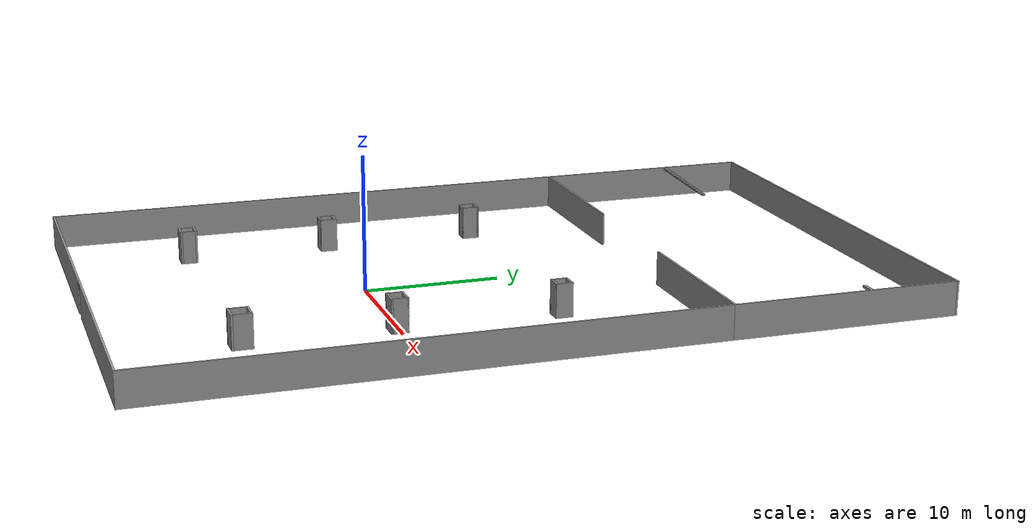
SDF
<?xml version='1.0'?>
<sdf version='1.7'>
  <model name='hall'>
    <pose>-0.072827 8.67162 0 0 -0 0</pose>
    <link name='Stairs_0'>
      <visual name='Stairs_0_Visual_0'>
        <pose>-17.3669 25.7971 0.083333 0 -0 0</pose>
        <geometry>
          <box>
            <size>1 0.233333 0.166667</size>
          </box>
        </geometry>
        <material>
          <script>
            <uri>file://media/materials/scripts/gazebo.material</uri>
            <name>Gazebo/Grey</name>
          </script>
          <ambient>1 1 1 1</ambient>
        </material>
        <meta>
          <layer>0</layer>
        </meta>
      </visual>
      <collision name='Stairs_0_Collision_0'>
        <geometry>
          <box>
            <size>1 0.233333 0.166667</size>
          </box>
        </geometry>
        <pose>-17.3669 25.7971 0.083333 0 -0 0</pose>
      </collision>
      <visual name='Stairs_0_Visual_1'>
        <pose>-17.3669 25.5638 0.25 0 -0 0</pose>
        <geometry>
          <box>
            <size>1 0.233333 0.166667</size>
          </box>
        </geometry>
        <material>
          <script>
            <uri>file://media/materials/scripts/gazebo.material</uri>
            <name>Gazebo/Grey</name>
          </script>
          <ambient>1 1 1 1</ambient>
        </material>
        <meta>
          <layer>0</layer>
        </meta>
      </visual>
      <collision name='Stairs_0_Collision_1'>
        <geometry>
          <box>
            <size>1 0.233333 0.166667</size>
          </box>
        </geometry>
        <pose>-17.3669 25.5638 0.25 0 -0 0</pose>
      </collision>
      <visual name='Stairs_0_Visual_2'>
        <pose>-17.3669 25.3305 0.416667 0 -0 0</pose>
        <geometry>
          <box>
            <size>1 0.233333 0.166667</size>
          </box>
        </geometry>
        <material>
          <script>
            <uri>file://media/materials/scripts/gazebo.material</uri>
            <name>Gazebo/Grey</name>
          </script>
          <ambient>1 1 1 1</ambient>
        </material>
        <meta>
          <layer>0</layer>
        </meta>
      </visual>
      <collision name='Stairs_0_Collision_2'>
        <geometry>
          <box>
            <size>1 0.233333 0.166667</size>
          </box>
        </geometry>
        <pose>-17.3669 25.3305 0.416667 0 -0 0</pose>
      </collision>
      <visual name='Stairs_0_Visual_3'>
        <pose>-17.3669 25.0971 0.583333 0 -0 0</pose>
        <geometry>
          <box>
            <size>1 0.233333 0.166667</size>
          </box>
        </geometry>
        <material>
          <script>
            <uri>file://media/materials/scripts/gazebo.material</uri>
            <name>Gazebo/Grey</name>
          </script>
          <ambient>1 1 1 1</ambient>
        </material>
        <meta>
          <layer>0</layer>
        </meta>
      </visual>
      <collision name='Stairs_0_Collision_3'>
        <geometry>
          <box>
            <size>1 0.233333 0.166667</size>
          </box>
        </geometry>
        <pose>-17.3669 25.0971 0.583333 0 -0 0</pose>
      </collision>
      <visual name='Stairs_0_Visual_4'>
        <pose>-17.3669 24.8638 0.75 0 -0 0</pose>
        <geometry>
          <box>
            <size>1 0.233333 0.166667</size>
          </box>
        </geometry>
        <material>
          <script>
            <uri>file://media/materials/scripts/gazebo.material</uri>
            <name>Gazebo/Grey</name>
          </script>
          <ambient>1 1 1 1</ambient>
        </material>
        <meta>
          <layer>0</layer>
        </meta>
      </visual>
      <collision name='Stairs_0_Collision_4'>
        <geometry>
          <box>
            <size>1 0.233333 0.166667</size>
          </box>
        </geometry>
        <pose>-17.3669 24.8638 0.75 0 -0 0</pose>
      </collision>
      <visual name='Stairs_0_Visual_5'>
        <pose>-17.3669 24.6305 0.916667 0 -0 0</pose>
        <geometry>
          <box>
            <size>1 0.233333 0.166667</size>
          </box>
        </geometry>
        <material>
          <script>
            <uri>file://media/materials/scripts/gazebo.material</uri>
            <name>Gazebo/Grey</name>
          </script>
          <ambient>1 1 1 1</ambient>
        </material>
        <meta>
          <layer>0</layer>
        </meta>
      </visual>
      <collision name='Stairs_0_Collision_5'>
        <geometry>
          <box>
            <size>1 0.233333 0.166667</size>
          </box>
        </geometry>
        <pose>-17.3669 24.6305 0.916667 0 -0 0</pose>
      </collision>
      <visual name='Stairs_0_Visual_6'>
        <pose>-17.3669 24.3971 1.08333 0 -0 0</pose>
        <geometry>
          <box>
            <size>1 0.233333 0.166667</size>
          </box>
        </geometry>
        <material>
          <script>
            <uri>file://media/materials/scripts/gazebo.material</uri>
            <name>Gazebo/Grey</name>
          </script>
          <ambient>1 1 1 1</ambient>
        </material>
        <meta>
          <layer>0</layer>
        </meta>
      </visual>
      <collision name='Stairs_0_Collision_6'>
        <geometry>
          <box>
            <size>1 0.233333 0.166667</size>
          </box>
        </geometry>
        <pose>-17.3669 24.3971 1.08333 0 -0 0</pose>
      </collision>
      <visual name='Stairs_0_Visual_7'>
        <pose>-17.3669 24.1638 1.25 0 -0 0</pose>
        <geometry>
          <box>
            <size>1 0.233333 0.166667</size>
          </box>
        </geometry>
        <material>
          <script>
            <uri>file://media/materials/scripts/gazebo.material</uri>
            <name>Gazebo/Grey</name>
          </script>
          <ambient>1 1 1 1</ambient>
        </material>
        <meta>
          <layer>0</layer>
        </meta>
      </visual>
      <collision name='Stairs_0_Collision_7'>
        <geometry>
          <box>
            <size>1 0.233333 0.166667</size>
          </box>
        </geometry>
        <pose>-17.3669 24.1638 1.25 0 -0 0</pose>
      </collision>
      <visual name='Stairs_0_Visual_8'>
        <pose>-17.3669 23.9305 1.41667 0 -0 0</pose>
        <geometry>
          <box>
            <size>1 0.233333 0.166667</size>
          </box>
        </geometry>
        <material>
          <script>
            <uri>file://media/materials/scripts/gazebo.material</uri>
            <name>Gazebo/Grey</name>
          </script>
          <ambient>1 1 1 1</ambient>
        </material>
        <meta>
          <layer>0</layer>
        </meta>
      </visual>
      <collision name='Stairs_0_Collision_8'>
        <geometry>
          <box>
            <size>1 0.233333 0.166667</size>
          </box>
        </geometry>
        <pose>-17.3669 23.9305 1.41667 0 -0 0</pose>
      </collision>
      <visual name='Stairs_0_Visual_9'>
        <pose>-17.3669 23.6971 1.58333 0 -0 0</pose>
        <geometry>
          <box>
            <size>1 0.233333 0.166667</size>
          </box>
        </geometry>
        <material>
          <script>
            <uri>file://media/materials/scripts/gazebo.material</uri>
            <name>Gazebo/Grey</name>
          </script>
          <ambient>1 1 1 1</ambient>
        </material>
        <meta>
          <layer>0</layer>
        </meta>
      </visual>
      <collision name='Stairs_0_Collision_9'>
        <geometry>
          <box>
            <size>1 0.233333 0.166667</size>
          </box>
        </geometry>
        <pose>-17.3669 23.6971 1.58333 0 -0 0</pose>
      </collision>
      <visual name='Stairs_0_Visual_10'>
        <pose>-17.3669 23.4638 1.75 0 -0 0</pose>
        <geometry>
          <box>
            <size>1 0.233333 0.166667</size>
          </box>
        </geometry>
        <material>
          <script>
            <uri>file://media/materials/scripts/gazebo.material</uri>
            <name>Gazebo/Grey</name>
          </script>
          <ambient>1 1 1 1</ambient>
        </material>
        <meta>
          <layer>0</layer>
        </meta>
      </visual>
      <collision name='Stairs_0_Collision_10'>
        <geometry>
          <box>
            <size>1 0.233333 0.166667</size>
          </box>
        </geometry>
        <pose>-17.3669 23.4638 1.75 0 -0 0</pose>
      </collision>
      <visual name='Stairs_0_Visual_11'>
        <pose>-17.3669 23.2305 1.91667 0 -0 0</pose>
        <geometry>
          <box>
            <size>1 0.233333 0.166667</size>
          </box>
        </geometry>
        <material>
          <script>
            <uri>file://media/materials/scripts/gazebo.material</uri>
            <name>Gazebo/Grey</name>
          </script>
          <ambient>1 1 1 1</ambient>
        </material>
        <meta>
          <layer>0</layer>
        </meta>
      </visual>
      <collision name='Stairs_0_Collision_11'>
        <geometry>
          <box>
            <size>1 0.233333 0.166667</size>
          </box>
        </geometry>
        <pose>-17.3669 23.2305 1.91667 0 -0 0</pose>
      </collision>
      <visual name='Stairs_0_Visual_12'>
        <pose>-17.3669 22.9971 2.08333 0 -0 0</pose>
        <geometry>
          <box>
            <size>1 0.233333 0.166667</size>
          </box>
        </geometry>
        <material>
          <script>
            <uri>file://media/materials/scripts/gazebo.material</uri>
            <name>Gazebo/Grey</name>
          </script>
          <ambient>1 1 1 1</ambient>
        </material>
        <meta>
          <layer>0</layer>
        </meta>
      </visual>
      <collision name='Stairs_0_Collision_12'>
        <geometry>
          <box>
            <size>1 0.233333 0.166667</size>
          </box>
        </geometry>
        <pose>-17.3669 22.9971 2.08333 0 -0 0</pose>
      </collision>
      <visual name='Stairs_0_Visual_13'>
        <pose>-17.3669 22.7638 2.25 0 -0 0</pose>
        <geometry>
          <box>
            <size>1 0.233333 0.166667</size>
          </box>
        </geometry>
        <material>
          <script>
            <uri>file://media/materials/scripts/gazebo.material</uri>
            <name>Gazebo/Grey</name>
          </script>
          <ambient>1 1 1 1</ambient>
        </material>
        <meta>
          <layer>0</layer>
        </meta>
      </visual>
      <collision name='Stairs_0_Collision_13'>
        <geometry>
          <box>
            <size>1 0.233333 0.166667</size>
          </box>
        </geometry>
        <pose>-17.3669 22.7638 2.25 0 -0 0</pose>
      </collision>
      <visual name='Stairs_0_Visual_14'>
        <pose>-17.3669 22.5305 2.41667 0 -0 0</pose>
        <geometry>
          <box>
            <size>1 0.233333 0.166667</size>
          </box>
        </geometry>
        <material>
          <script>
            <uri>file://media/materials/scripts/gazebo.material</uri>
            <name>Gazebo/Grey</name>
          </script>
          <ambient>1 1 1 1</ambient>
        </material>
        <meta>
          <layer>0</layer>
        </meta>
      </visual>
      <collision name='Stairs_0_Collision_14'>
        <geometry>
          <box>
            <size>1 0.233333 0.166667</size>
          </box>
        </geometry>
        <pose>-17.3669 22.5305 2.41667 0 -0 0</pose>
      </collision>
    </link>
    <link name='Stairs_1'>
      <visual name='Stairs_1_Visual_0'>
        <pose>17.429 25.4993 0.083333 0 -0 0</pose>
        <geometry>
          <box>
            <size>1 0.233333 0.166667</size>
          </box>
        </geometry>
        <material>
          <script>
            <uri>file://media/materials/scripts/gazebo.material</uri>
            <name>Gazebo/Grey</name>
          </script>
          <ambient>1 1 1 1</ambient>
        </material>
        <meta>
          <layer>0</layer>
        </meta>
      </visual>
      <collision name='Stairs_1_Collision_0'>
        <geometry>
          <box>
            <size>1 0.233333 0.166667</size>
          </box>
        </geometry>
        <pose>17.429 25.4993 0.083333 0 -0 0</pose>
      </collision>
      <visual name='Stairs_1_Visual_1'>
        <pose>17.429 25.266 0.25 0 -0 0</pose>
        <geometry>
          <box>
            <size>1 0.233333 0.166667</size>
          </box>
        </geometry>
        <material>
          <script>
            <uri>file://media/materials/scripts/gazebo.material</uri>
            <name>Gazebo/Grey</name>
          </script>
          <ambient>1 1 1 1</ambient>
        </material>
        <meta>
          <layer>0</layer>
        </meta>
      </visual>
      <collision name='Stairs_1_Collision_1'>
        <geometry>
          <box>
            <size>1 0.233333 0.166667</size>
          </box>
        </geometry>
        <pose>17.429 25.266 0.25 0 -0 0</pose>
      </collision>
      <visual name='Stairs_1_Visual_2'>
        <pose>17.429 25.0327 0.416667 0 -0 0</pose>
        <geometry>
          <box>
            <size>1 0.233333 0.166667</size>
          </box>
        </geometry>
        <material>
          <script>
            <uri>file://media/materials/scripts/gazebo.material</uri>
            <name>Gazebo/Grey</name>
          </script>
          <ambient>1 1 1 1</ambient>
        </material>
        <meta>
          <layer>0</layer>
        </meta>
      </visual>
      <collision name='Stairs_1_Collision_2'>
        <geometry>
          <box>
            <size>1 0.233333 0.166667</size>
          </box>
        </geometry>
        <pose>17.429 25.0327 0.416667 0 -0 0</pose>
      </collision>
      <visual name='Stairs_1_Visual_3'>
        <pose>17.429 24.7993 0.583333 0 -0 0</pose>
        <geometry>
          <box>
            <size>1 0.233333 0.166667</size>
          </box>
        </geometry>
        <material>
          <script>
            <uri>file://media/materials/scripts/gazebo.material</uri>
            <name>Gazebo/Grey</name>
          </script>
          <ambient>1 1 1 1</ambient>
        </material>
        <meta>
          <layer>0</layer>
        </meta>
      </visual>
      <collision name='Stairs_1_Collision_3'>
        <geometry>
          <box>
            <size>1 0.233333 0.166667</size>
          </box>
        </geometry>
        <pose>17.429 24.7993 0.583333 0 -0 0</pose>
      </collision>
      <visual name='Stairs_1_Visual_4'>
        <pose>17.429 24.566 0.75 0 -0 0</pose>
        <geometry>
          <box>
            <size>1 0.233333 0.166667</size>
          </box>
        </geometry>
        <material>
          <script>
            <uri>file://media/materials/scripts/gazebo.material</uri>
            <name>Gazebo/Grey</name>
          </script>
          <ambient>1 1 1 1</ambient>
        </material>
        <meta>
          <layer>0</layer>
        </meta>
      </visual>
      <collision name='Stairs_1_Collision_4'>
        <geometry>
          <box>
            <size>1 0.233333 0.166667</size>
          </box>
        </geometry>
        <pose>17.429 24.566 0.75 0 -0 0</pose>
      </collision>
      <visual name='Stairs_1_Visual_5'>
        <pose>17.429 24.3327 0.916667 0 -0 0</pose>
        <geometry>
          <box>
            <size>1 0.233333 0.166667</size>
          </box>
        </geometry>
        <material>
          <script>
            <uri>file://media/materials/scripts/gazebo.material</uri>
            <name>Gazebo/Grey</name>
          </script>
          <ambient>1 1 1 1</ambient>
        </material>
        <meta>
          <layer>0</layer>
        </meta>
      </visual>
      <collision name='Stairs_1_Collision_5'>
        <geometry>
          <box>
            <size>1 0.233333 0.166667</size>
          </box>
        </geometry>
        <pose>17.429 24.3327 0.916667 0 -0 0</pose>
      </collision>
      <visual name='Stairs_1_Visual_6'>
        <pose>17.429 24.0993 1.08333 0 -0 0</pose>
        <geometry>
          <box>
            <size>1 0.233333 0.166667</size>
          </box>
        </geometry>
        <material>
          <script>
            <uri>file://media/materials/scripts/gazebo.material</uri>
            <name>Gazebo/Grey</name>
          </script>
          <ambient>1 1 1 1</ambient>
        </material>
        <meta>
          <layer>0</layer>
        </meta>
      </visual>
      <collision name='Stairs_1_Collision_6'>
        <geometry>
          <box>
            <size>1 0.233333 0.166667</size>
          </box>
        </geometry>
        <pose>17.429 24.0993 1.08333 0 -0 0</pose>
      </collision>
      <visual name='Stairs_1_Visual_7'>
        <pose>17.429 23.866 1.25 0 -0 0</pose>
        <geometry>
          <box>
            <size>1 0.233333 0.166667</size>
          </box>
        </geometry>
        <material>
          <script>
            <uri>file://media/materials/scripts/gazebo.material</uri>
            <name>Gazebo/Grey</name>
          </script>
          <ambient>1 1 1 1</ambient>
        </material>
        <meta>
          <layer>0</layer>
        </meta>
      </visual>
      <collision name='Stairs_1_Collision_7'>
        <geometry>
          <box>
            <size>1 0.233333 0.166667</size>
          </box>
        </geometry>
        <pose>17.429 23.866 1.25 0 -0 0</pose>
      </collision>
      <visual name='Stairs_1_Visual_8'>
        <pose>17.429 23.6327 1.41667 0 -0 0</pose>
        <geometry>
          <box>
            <size>1 0.233333 0.166667</size>
          </box>
        </geometry>
        <material>
          <script>
            <uri>file://media/materials/scripts/gazebo.material</uri>
            <name>Gazebo/Grey</name>
          </script>
          <ambient>1 1 1 1</ambient>
        </material>
        <meta>
          <layer>0</layer>
        </meta>
      </visual>
      <collision name='Stairs_1_Collision_8'>
        <geometry>
          <box>
            <size>1 0.233333 0.166667</size>
          </box>
        </geometry>
        <pose>17.429 23.6327 1.41667 0 -0 0</pose>
      </collision>
      <visual name='Stairs_1_Visual_9'>
        <pose>17.429 23.3993 1.58333 0 -0 0</pose>
        <geometry>
          <box>
            <size>1 0.233333 0.166667</size>
          </box>
        </geometry>
        <material>
          <script>
            <uri>file://media/materials/scripts/gazebo.material</uri>
            <name>Gazebo/Grey</name>
          </script>
          <ambient>1 1 1 1</ambient>
        </material>
        <meta>
          <layer>0</layer>
        </meta>
      </visual>
      <collision name='Stairs_1_Collision_9'>
        <geometry>
          <box>
            <size>1 0.233333 0.166667</size>
          </box>
        </geometry>
        <pose>17.429 23.3993 1.58333 0 -0 0</pose>
      </collision>
      <visual name='Stairs_1_Visual_10'>
        <pose>17.429 23.166 1.75 0 -0 0</pose>
        <geometry>
          <box>
            <size>1 0.233333 0.166667</size>
          </box>
        </geometry>
        <material>
          <script>
            <uri>file://media/materials/scripts/gazebo.material</uri>
            <name>Gazebo/Grey</name>
          </script>
          <ambient>1 1 1 1</ambient>
        </material>
        <meta>
          <layer>0</layer>
        </meta>
      </visual>
      <collision name='Stairs_1_Collision_10'>
        <geometry>
          <box>
            <size>1 0.233333 0.166667</size>
          </box>
        </geometry>
        <pose>17.429 23.166 1.75 0 -0 0</pose>
      </collision>
      <visual name='Stairs_1_Visual_11'>
        <pose>17.429 22.9327 1.91667 0 -0 0</pose>
        <geometry>
          <box>
            <size>1 0.233333 0.166667</size>
          </box>
        </geometry>
        <material>
          <script>
            <uri>file://media/materials/scripts/gazebo.material</uri>
            <name>Gazebo/Grey</name>
          </script>
          <ambient>1 1 1 1</ambient>
        </material>
        <meta>
          <layer>0</layer>
        </meta>
      </visual>
      <collision name='Stairs_1_Collision_11'>
        <geometry>
          <box>
            <size>1 0.233333 0.166667</size>
          </box>
        </geometry>
        <pose>17.429 22.9327 1.91667 0 -0 0</pose>
      </collision>
      <visual name='Stairs_1_Visual_12'>
        <pose>17.429 22.6993 2.08333 0 -0 0</pose>
        <geometry>
          <box>
            <size>1 0.233333 0.166667</size>
          </box>
        </geometry>
        <material>
          <script>
            <uri>file://media/materials/scripts/gazebo.material</uri>
            <name>Gazebo/Grey</name>
          </script>
          <ambient>1 1 1 1</ambient>
        </material>
        <meta>
          <layer>0</layer>
        </meta>
      </visual>
      <collision name='Stairs_1_Collision_12'>
        <geometry>
          <box>
            <size>1 0.233333 0.166667</size>
          </box>
        </geometry>
        <pose>17.429 22.6993 2.08333 0 -0 0</pose>
      </collision>
      <visual name='Stairs_1_Visual_13'>
        <pose>17.429 22.466 2.25 0 -0 0</pose>
        <geometry>
          <box>
            <size>1 0.233333 0.166667</size>
          </box>
        </geometry>
        <material>
          <script>
            <uri>file://media/materials/scripts/gazebo.material</uri>
            <name>Gazebo/Grey</name>
          </script>
          <ambient>1 1 1 1</ambient>
        </material>
        <meta>
          <layer>0</layer>
        </meta>
      </visual>
      <collision name='Stairs_1_Collision_13'>
        <geometry>
          <box>
            <size>1 0.233333 0.166667</size>
          </box>
        </geometry>
        <pose>17.429 22.466 2.25 0 -0 0</pose>
      </collision>
      <visual name='Stairs_1_Visual_14'>
        <pose>17.429 22.2327 2.41667 0 -0 0</pose>
        <geometry>
          <box>
            <size>1 0.233333 0.166667</size>
          </box>
        </geometry>
        <material>
          <script>
            <uri>file://media/materials/scripts/gazebo.material</uri>
            <name>Gazebo/Grey</name>
          </script>
          <ambient>1 1 1 1</ambient>
        </material>
        <meta>
          <layer>0</layer>
        </meta>
      </visual>
      <collision name='Stairs_1_Collision_14'>
        <geometry>
          <box>
            <size>1 0.233333 0.166667</size>
          </box>
        </geometry>
        <pose>17.429 22.2327 2.41667 0 -0 0</pose>
      </collision>
    </link>
    <link name='Wall_1'>
      <collision name='Wall_1_Collision'>
        <geometry>
          <box>
            <size>41 0.15 2.5</size>
          </box>
        </geometry>
        <pose>0 0 1.25 0 -0 0</pose>
      </collision>
      <visual name='Wall_1_Visual'>
        <pose>0 0 1.25 0 -0 0</pose>
        <geometry>
          <box>
            <size>41 0.15 2.5</size>
          </box>
        </geometry>
        <material>
          <script>
            <uri>file://media/materials/scripts/gazebo.material</uri>
            <name>Gazebo/Grey</name>
          </script>
          <ambient>1 1 1 1</ambient>
        </material>
        <meta>
          <layer>0</layer>
        </meta>
      </visual>
      <pose>-18.05 -8.425 0 0 -0 -1.5708</pose>
    </link>
    <link name='Wall_10'>
      <collision name='Wall_10_Collision'>
        <geometry>
          <box>
            <size>1.25 0.15 2.5</size>
          </box>
        </geometry>
        <pose>0 0 1.25 0 -0 0</pose>
      </collision>
      <visual name='Wall_10_Visual'>
        <pose>0 0 1.25 0 -0 0</pose>
        <geometry>
          <box>
            <size>1.25 0.15 2.5</size>
          </box>
        </geometry>
        <material>
          <script>
            <uri>file://media/materials/scripts/gazebo.material</uri>
            <name>Gazebo/Grey</name>
          </script>
          <ambient>1 1 1 1</ambient>
        </material>
        <meta>
          <layer>0</layer>
        </meta>
      </visual>
      <pose>-11.792 2.72348 0 0 -0 -1.5708</pose>
    </link>
    <link name='Wall_11'>
      <collision name='Wall_11_Collision'>
        <geometry>
          <box>
            <size>1.25 0.15 2.5</size>
          </box>
        </geometry>
        <pose>0 0 1.25 0 -0 0</pose>
      </collision>
      <visual name='Wall_11_Visual'>
        <pose>0 0 1.25 0 -0 0</pose>
        <geometry>
          <box>
            <size>1.25 0.15 2.5</size>
          </box>
        </geometry>
        <material>
          <script>
            <uri>file://media/materials/scripts/gazebo.material</uri>
            <name>Gazebo/Grey</name>
          </script>
          <ambient>1 1 1 1</ambient>
        </material>
        <meta>
          <layer>0</layer>
        </meta>
      </visual>
      <pose>-11.242 2.17348 0 0 -0 0</pose>
    </link>
    <link name='Wall_12'>
      <collision name='Wall_12_Collision'>
        <geometry>
          <box>
            <size>1.25 0.15 2.5</size>
          </box>
        </geometry>
        <pose>0 0 1.25 0 -0 0</pose>
      </collision>
      <visual name='Wall_12_Visual'>
        <pose>0 0 1.25 0 -0 0</pose>
        <geometry>
          <box>
            <size>1.25 0.15 2.5</size>
          </box>
        </geometry>
        <material>
          <script>
            <uri>file://media/materials/scripts/gazebo.material</uri>
            <name>Gazebo/Grey</name>
          </script>
          <ambient>1 1 1 1</ambient>
        </material>
        <meta>
          <layer>0</layer>
        </meta>
      </visual>
      <pose>-10.692 2.72348 0 0 -0 1.5708</pose>
    </link>
    <link name='Wall_13'>
      <collision name='Wall_13_Collision'>
        <geometry>
          <box>
            <size>1.25 0.15 2.5</size>
          </box>
        </geometry>
        <pose>0 0 1.25 0 -0 0</pose>
      </collision>
      <visual name='Wall_13_Visual'>
        <pose>0 0 1.25 0 -0 0</pose>
        <geometry>
          <box>
            <size>1.25 0.15 2.5</size>
          </box>
        </geometry>
        <material>
          <script>
            <uri>file://media/materials/scripts/gazebo.material</uri>
            <name>Gazebo/Grey</name>
          </script>
          <ambient>1 1 1 1</ambient>
        </material>
        <meta>
          <layer>0</layer>
        </meta>
      </visual>
      <pose>-11.242 3.27348 0 0 -0 3.14159</pose>
    </link>
    <link name='Wall_15'>
      <collision name='Wall_15_Collision'>
        <geometry>
          <box>
            <size>1.25 0.15 2.5</size>
          </box>
        </geometry>
        <pose>0 0 1.25 0 -0 0</pose>
      </collision>
      <visual name='Wall_15_Visual'>
        <pose>0 0 1.25 0 -0 0</pose>
        <geometry>
          <box>
            <size>1.25 0.15 2.5</size>
          </box>
        </geometry>
        <material>
          <script>
            <uri>file://media/materials/scripts/gazebo.material</uri>
            <name>Gazebo/Grey</name>
          </script>
          <ambient>1 1 1 1</ambient>
        </material>
        <meta>
          <layer>0</layer>
        </meta>
      </visual>
      <pose>-11.7448 -8.78633 0 0 -0 -1.5708</pose>
    </link>
    <link name='Wall_16'>
      <collision name='Wall_16_Collision'>
        <geometry>
          <box>
            <size>1.25 0.15 2.5</size>
          </box>
        </geometry>
        <pose>0 0 1.25 0 -0 0</pose>
      </collision>
      <visual name='Wall_16_Visual'>
        <pose>0 0 1.25 0 -0 0</pose>
        <geometry>
          <box>
            <size>1.25 0.15 2.5</size>
          </box>
        </geometry>
        <material>
          <script>
            <uri>file://media/materials/scripts/gazebo.material</uri>
            <name>Gazebo/Grey</name>
          </script>
          <ambient>1 1 1 1</ambient>
        </material>
        <meta>
          <layer>0</layer>
        </meta>
      </visual>
      <pose>-11.1949 -9.33633 0 0 -0 0</pose>
    </link>
    <link name='Wall_2'>
      <pose>0 -28.85 0 0 -0 0</pose>
      <visual name='Wall_2_Visual_0'>
        <pose>-9.49152 0 1.25 0 -0 0</pose>
        <geometry>
          <box>
            <size>17.267 0.15 2.5</size>
          </box>
        </geometry>
        <material>
          <script>
            <uri>file://media/materials/scripts/gazebo.material</uri>
            <name>Gazebo/Grey</name>
          </script>
          <ambient>1 1 1 1</ambient>
        </material>
        <meta>
          <layer>0</layer>
        </meta>
      </visual>
      <collision name='Wall_2_Collision_0'>
        <geometry>
          <box>
            <size>17.267 0.15 2.5</size>
          </box>
        </geometry>
        <pose>-9.49152 0 1.25 0 -0 0</pose>
      </collision>
      <visual name='Wall_2_Visual_1'>
        <pose>9.08348 0 1.25 0 -0 0</pose>
        <geometry>
          <box>
            <size>18.083 0.15 2.5</size>
          </box>
        </geometry>
        <material>
          <script>
            <uri>file://media/materials/scripts/gazebo.material</uri>
            <name>Gazebo/Grey</name>
          </script>
          <ambient>1 1 1 1</ambient>
        </material>
        <meta>
          <layer>0</layer>
        </meta>
      </visual>
      <collision name='Wall_2_Collision_1'>
        <geometry>
          <box>
            <size>18.083 0.15 2.5</size>
          </box>
        </geometry>
        <pose>9.08348 0 1.25 0 -0 0</pose>
      </collision>
      <visual name='Wall_2_Visual_2'>
        <pose>9.52908 0 1.25 0 -0 0</pose>
        <geometry>
          <box>
            <size>17.1918 0.15 2.5</size>
          </box>
        </geometry>
        <material>
          <script>
            <uri>file://media/materials/scripts/gazebo.material</uri>
            <name>Gazebo/Grey</name>
          </script>
          <ambient>1 1 1 1</ambient>
        </material>
        <meta>
          <layer>0</layer>
        </meta>
      </visual>
      <collision name='Wall_2_Collision_2'>
        <geometry>
          <box>
            <size>17.1918 0.15 2.5</size>
          </box>
        </geometry>
        <pose>9.52908 0 1.25 0 -0 0</pose>
      </collision>
      <visual name='Wall_2_Visual_3'>
        <pose>-0.41244 0 2.25 0 -0 0</pose>
        <geometry>
          <box>
            <size>0.891195 0.15 0.5</size>
          </box>
        </geometry>
        <material>
          <script>
            <uri>file://media/materials/scripts/gazebo.material</uri>
            <name>Gazebo/Grey</name>
          </script>
          <ambient>1 1 1 1</ambient>
        </material>
        <meta>
          <layer>0</layer>
        </meta>
      </visual>
      <collision name='Wall_2_Collision_3'>
        <geometry>
          <box>
            <size>0.891195 0.15 0.5</size>
          </box>
        </geometry>
        <pose>-0.41244 0 2.25 0 -0 0</pose>
      </collision>
    </link>
    <link name='Wall_20'>
      <collision name='Wall_20_Collision'>
        <geometry>
          <box>
            <size>1.25 0.15 2.5</size>
          </box>
        </geometry>
        <pose>0 0 1.25 0 -0 0</pose>
      </collision>
      <visual name='Wall_20_Visual'>
        <pose>0 0 1.25 0 -0 0</pose>
        <geometry>
          <box>
            <size>1.25 0.15 2.5</size>
          </box>
        </geometry>
        <material>
          <script>
            <uri>file://media/materials/scripts/gazebo.material</uri>
            <name>Gazebo/Grey</name>
          </script>
          <ambient>1 1 1 1</ambient>
        </material>
        <meta>
          <layer>0</layer>
        </meta>
      </visual>
      <pose>-10.6448 -8.78633 0 0 -0 1.5708</pose>
    </link>
    <link name='Wall_21'>
      <collision name='Wall_21_Collision'>
        <geometry>
          <box>
            <size>1.25 0.15 2.5</size>
          </box>
        </geometry>
        <pose>0 0 1.25 0 -0 0</pose>
      </collision>
      <visual name='Wall_21_Visual'>
        <pose>0 0 1.25 0 -0 0</pose>
        <geometry>
          <box>
            <size>1.25 0.15 2.5</size>
          </box>
        </geometry>
        <material>
          <script>
            <uri>file://media/materials/scripts/gazebo.material</uri>
            <name>Gazebo/Grey</name>
          </script>
          <ambient>1 1 1 1</ambient>
        </material>
        <meta>
          <layer>0</layer>
        </meta>
      </visual>
      <pose>-11.1949 -8.23633 0 0 -0 3.14159</pose>
    </link>
    <link name='Wall_23'>
      <collision name='Wall_23_Collision'>
        <geometry>
          <box>
            <size>1.25 0.15 2.5</size>
          </box>
        </geometry>
        <pose>0 0 1.25 0 -0 0</pose>
      </collision>
      <visual name='Wall_23_Visual'>
        <pose>0 0 1.25 0 -0 0</pose>
        <geometry>
          <box>
            <size>1.25 0.15 2.5</size>
          </box>
        </geometry>
        <material>
          <script>
            <uri>file://media/materials/scripts/gazebo.material</uri>
            <name>Gazebo/Grey</name>
          </script>
          <ambient>1 1 1 1</ambient>
        </material>
        <meta>
          <layer>0</layer>
        </meta>
      </visual>
      <pose>-11.7545 -19.612 0 0 -0 -1.5708</pose>
    </link>
    <link name='Wall_24'>
      <collision name='Wall_24_Collision'>
        <geometry>
          <box>
            <size>1.25 0.15 2.5</size>
          </box>
        </geometry>
        <pose>0 0 1.25 0 -0 0</pose>
      </collision>
      <visual name='Wall_24_Visual'>
        <pose>0 0 1.25 0 -0 0</pose>
        <geometry>
          <box>
            <size>1.25 0.15 2.5</size>
          </box>
        </geometry>
        <material>
          <script>
            <uri>file://media/materials/scripts/gazebo.material</uri>
            <name>Gazebo/Grey</name>
          </script>
          <ambient>1 1 1 1</ambient>
        </material>
        <meta>
          <layer>0</layer>
        </meta>
      </visual>
      <pose>-11.2045 -20.162 0 0 -0 0</pose>
    </link>
    <link name='Wall_25'>
      <collision name='Wall_25_Collision'>
        <geometry>
          <box>
            <size>1.25 0.15 2.5</size>
          </box>
        </geometry>
        <pose>0 0 1.25 0 -0 0</pose>
      </collision>
      <visual name='Wall_25_Visual'>
        <pose>0 0 1.25 0 -0 0</pose>
        <geometry>
          <box>
            <size>1.25 0.15 2.5</size>
          </box>
        </geometry>
        <material>
          <script>
            <uri>file://media/materials/scripts/gazebo.material</uri>
            <name>Gazebo/Grey</name>
          </script>
          <ambient>1 1 1 1</ambient>
        </material>
        <meta>
          <layer>0</layer>
        </meta>
      </visual>
      <pose>-10.6545 -19.612 0 0 -0 1.5708</pose>
    </link>
    <link name='Wall_26'>
      <collision name='Wall_26_Collision'>
        <geometry>
          <box>
            <size>1.25 0.15 2.5</size>
          </box>
        </geometry>
        <pose>0 0 1.25 0 -0 0</pose>
      </collision>
      <visual name='Wall_26_Visual'>
        <pose>0 0 1.25 0 -0 0</pose>
        <geometry>
          <box>
            <size>1.25 0.15 2.5</size>
          </box>
        </geometry>
        <material>
          <script>
            <uri>file://media/materials/scripts/gazebo.material</uri>
            <name>Gazebo/Grey</name>
          </script>
          <ambient>1 1 1 1</ambient>
        </material>
        <meta>
          <layer>0</layer>
        </meta>
      </visual>
      <pose>-11.2045 -19.062 0 0 -0 3.14159</pose>
    </link>
    <link name='Wall_28'>
      <collision name='Wall_28_Collision'>
        <geometry>
          <box>
            <size>1.25 0.15 2.5</size>
          </box>
        </geometry>
        <pose>0 0 1.25 0 -0 0</pose>
      </collision>
      <visual name='Wall_28_Visual'>
        <pose>0 0 1.25 0 -0 0</pose>
        <geometry>
          <box>
            <size>1.25 0.15 2.5</size>
          </box>
        </geometry>
        <material>
          <script>
            <uri>file://media/materials/scripts/gazebo.material</uri>
            <name>Gazebo/Grey</name>
          </script>
          <ambient>1 1 1 1</ambient>
        </material>
        <meta>
          <layer>0</layer>
        </meta>
      </visual>
      <pose>9.07137 2.85552 0 0 -0 -1.5708</pose>
    </link>
    <link name='Wall_29'>
      <collision name='Wall_29_Collision'>
        <geometry>
          <box>
            <size>1.25 0.15 2.5</size>
          </box>
        </geometry>
        <pose>0 0 1.25 0 -0 0</pose>
      </collision>
      <visual name='Wall_29_Visual'>
        <pose>0 0 1.25 0 -0 0</pose>
        <geometry>
          <box>
            <size>1.25 0.15 2.5</size>
          </box>
        </geometry>
        <material>
          <script>
            <uri>file://media/materials/scripts/gazebo.material</uri>
            <name>Gazebo/Grey</name>
          </script>
          <ambient>1 1 1 1</ambient>
        </material>
        <meta>
          <layer>0</layer>
        </meta>
      </visual>
      <pose>9.62137 2.30552 0 0 -0 0</pose>
    </link>
    <link name='Wall_3'>
      <collision name='Wall_3_Collision'>
        <geometry>
          <box>
            <size>41 0.15 2.5</size>
          </box>
        </geometry>
        <pose>0 0 1.25 0 -0 0</pose>
      </collision>
      <visual name='Wall_3_Visual'>
        <pose>0 0 1.25 0 -0 0</pose>
        <geometry>
          <box>
            <size>41 0.15 2.5</size>
          </box>
        </geometry>
        <material>
          <script>
            <uri>file://media/materials/scripts/gazebo.material</uri>
            <name>Gazebo/Grey</name>
          </script>
          <ambient>1 1 1 1</ambient>
        </material>
        <meta>
          <layer>0</layer>
        </meta>
      </visual>
      <pose>18.05 -8.425 0 0 -0 1.5708</pose>
    </link>
    <link name='Wall_30'>
      <collision name='Wall_30_Collision'>
        <geometry>
          <box>
            <size>1.25 0.15 2.5</size>
          </box>
        </geometry>
        <pose>0 0 1.25 0 -0 0</pose>
      </collision>
      <visual name='Wall_30_Visual'>
        <pose>0 0 1.25 0 -0 0</pose>
        <geometry>
          <box>
            <size>1.25 0.15 2.5</size>
          </box>
        </geometry>
        <material>
          <script>
            <uri>file://media/materials/scripts/gazebo.material</uri>
            <name>Gazebo/Grey</name>
          </script>
          <ambient>1 1 1 1</ambient>
        </material>
        <meta>
          <layer>0</layer>
        </meta>
      </visual>
      <pose>10.1714 2.85552 0 0 -0 1.5708</pose>
    </link>
    <link name='Wall_31'>
      <collision name='Wall_31_Collision'>
        <geometry>
          <box>
            <size>1.25 0.15 2.5</size>
          </box>
        </geometry>
        <pose>0 0 1.25 0 -0 0</pose>
      </collision>
      <visual name='Wall_31_Visual'>
        <pose>0 0 1.25 0 -0 0</pose>
        <geometry>
          <box>
            <size>1.25 0.15 2.5</size>
          </box>
        </geometry>
        <material>
          <script>
            <uri>file://media/materials/scripts/gazebo.material</uri>
            <name>Gazebo/Grey</name>
          </script>
          <ambient>1 1 1 1</ambient>
        </material>
        <meta>
          <layer>0</layer>
        </meta>
      </visual>
      <pose>9.62137 3.40552 0 0 -0 3.14159</pose>
    </link>
    <link name='Wall_33'>
      <collision name='Wall_33_Collision'>
        <geometry>
          <box>
            <size>1.25 0.15 2.5</size>
          </box>
        </geometry>
        <pose>0 0 1.25 0 -0 0</pose>
      </collision>
      <visual name='Wall_33_Visual'>
        <pose>0 0 1.25 0 -0 0</pose>
        <geometry>
          <box>
            <size>1.25 0.15 2.5</size>
          </box>
        </geometry>
        <material>
          <script>
            <uri>file://media/materials/scripts/gazebo.material</uri>
            <name>Gazebo/Grey</name>
          </script>
          <ambient>1 1 1 1</ambient>
        </material>
        <meta>
          <layer>0</layer>
        </meta>
      </visual>
      <pose>8.55541 -8.82383 0 0 -0 -1.5708</pose>
    </link>
    <link name='Wall_34'>
      <collision name='Wall_34_Collision'>
        <geometry>
          <box>
            <size>1.5 0.15 2.5</size>
          </box>
        </geometry>
        <pose>0 0 1.25 0 -0 0</pose>
      </collision>
      <visual name='Wall_34_Visual'>
        <pose>0 0 1.25 0 -0 0</pose>
        <geometry>
          <box>
            <size>1.5 0.15 2.5</size>
          </box>
        </geometry>
        <material>
          <script>
            <uri>file://media/materials/scripts/gazebo.material</uri>
            <name>Gazebo/Grey</name>
          </script>
          <ambient>1 1 1 1</ambient>
        </material>
        <meta>
          <layer>0</layer>
        </meta>
      </visual>
      <pose>9.23041 -9.37383 0 0 -0 0</pose>
    </link>
    <link name='Wall_35'>
      <collision name='Wall_35_Collision'>
        <geometry>
          <box>
            <size>1.25 0.15 2.5</size>
          </box>
        </geometry>
        <pose>0 0 1.25 0 -0 0</pose>
      </collision>
      <visual name='Wall_35_Visual'>
        <pose>0 0 1.25 0 -0 0</pose>
        <geometry>
          <box>
            <size>1.25 0.15 2.5</size>
          </box>
        </geometry>
        <material>
          <script>
            <uri>file://media/materials/scripts/gazebo.material</uri>
            <name>Gazebo/Grey</name>
          </script>
          <ambient>1 1 1 1</ambient>
        </material>
        <meta>
          <layer>0</layer>
        </meta>
      </visual>
      <pose>9.90541 -8.82383 0 0 -0 1.5708</pose>
    </link>
    <link name='Wall_36'>
      <collision name='Wall_36_Collision'>
        <geometry>
          <box>
            <size>1.5 0.15 2.5</size>
          </box>
        </geometry>
        <pose>0 0 1.25 0 -0 0</pose>
      </collision>
      <visual name='Wall_36_Visual'>
        <pose>0 0 1.25 0 -0 0</pose>
        <geometry>
          <box>
            <size>1.5 0.15 2.5</size>
          </box>
        </geometry>
        <material>
          <script>
            <uri>file://media/materials/scripts/gazebo.material</uri>
            <name>Gazebo/Grey</name>
          </script>
          <ambient>1 1 1 1</ambient>
        </material>
        <meta>
          <layer>0</layer>
        </meta>
      </visual>
      <pose>9.23041 -8.27383 0 0 -0 3.14159</pose>
    </link>
    <link name='Wall_38'>
      <collision name='Wall_38_Collision'>
        <geometry>
          <box>
            <size>1.5 0.15 2.5</size>
          </box>
        </geometry>
        <pose>0 0 1.25 0 -0 0</pose>
      </collision>
      <visual name='Wall_38_Visual'>
        <pose>0 0 1.25 0 -0 0</pose>
        <geometry>
          <box>
            <size>1.5 0.15 2.5</size>
          </box>
        </geometry>
        <material>
          <script>
            <uri>file://media/materials/scripts/gazebo.material</uri>
            <name>Gazebo/Grey</name>
          </script>
          <ambient>1 1 1 1</ambient>
        </material>
        <meta>
          <layer>0</layer>
        </meta>
      </visual>
      <pose>8.50851 -19.5494 0 0 -0 -1.5708</pose>
    </link>
    <link name='Wall_39'>
      <collision name='Wall_39_Collision'>
        <geometry>
          <box>
            <size>1.5 0.15 2.5</size>
          </box>
        </geometry>
        <pose>0 0 1.25 0 -0 0</pose>
      </collision>
      <visual name='Wall_39_Visual'>
        <pose>0 0 1.25 0 -0 0</pose>
        <geometry>
          <box>
            <size>1.5 0.15 2.5</size>
          </box>
        </geometry>
        <material>
          <script>
            <uri>file://media/materials/scripts/gazebo.material</uri>
            <name>Gazebo/Grey</name>
          </script>
          <ambient>1 1 1 1</ambient>
        </material>
        <meta>
          <layer>0</layer>
        </meta>
      </visual>
      <pose>9.18351 -20.2244 0 0 -0 0</pose>
    </link>
    <link name='Wall_40'>
      <collision name='Wall_40_Collision'>
        <geometry>
          <box>
            <size>1.5 0.15 2.5</size>
          </box>
        </geometry>
        <pose>0 0 1.25 0 -0 0</pose>
      </collision>
      <visual name='Wall_40_Visual'>
        <pose>0 0 1.25 0 -0 0</pose>
        <geometry>
          <box>
            <size>1.5 0.15 2.5</size>
          </box>
        </geometry>
        <material>
          <script>
            <uri>file://media/materials/scripts/gazebo.material</uri>
            <name>Gazebo/Grey</name>
          </script>
          <ambient>1 1 1 1</ambient>
        </material>
        <meta>
          <layer>0</layer>
        </meta>
      </visual>
      <pose>9.85851 -19.5494 0 0 -0 1.5708</pose>
    </link>
    <link name='Wall_41'>
      <collision name='Wall_41_Collision'>
        <geometry>
          <box>
            <size>1.5 0.15 2.5</size>
          </box>
        </geometry>
        <pose>0 0 1.25 0 -0 0</pose>
      </collision>
      <visual name='Wall_41_Visual'>
        <pose>0 0 1.25 0 -0 0</pose>
        <geometry>
          <box>
            <size>1.5 0.15 2.5</size>
          </box>
        </geometry>
        <material>
          <script>
            <uri>file://media/materials/scripts/gazebo.material</uri>
            <name>Gazebo/Grey</name>
          </script>
          <ambient>1 1 1 1</ambient>
        </material>
        <meta>
          <layer>0</layer>
        </meta>
      </visual>
      <pose>9.18351 -18.8744 0 0 -0 3.14159</pose>
    </link>
    <link name='Wall_43'>
      <collision name='Wall_43_Collision'>
        <geometry>
          <box>
            <size>17 0.15 2.5</size>
          </box>
        </geometry>
        <pose>0 0 1.25 0 -0 0</pose>
      </collision>
      <visual name='Wall_43_Visual'>
        <pose>0 0 1.25 0 -0 0</pose>
        <geometry>
          <box>
            <size>17 0.15 2.5</size>
          </box>
        </geometry>
        <material>
          <script>
            <uri>file://media/materials/scripts/gazebo.material</uri>
            <name>Gazebo/Grey</name>
          </script>
          <ambient>1 1 1 1</ambient>
        </material>
        <meta>
          <layer>0</layer>
        </meta>
      </visual>
      <pose>-18.05 20.425 0 0 -0 1.5708</pose>
    </link>
    <link name='Wall_49'>
      <collision name='Wall_49_Collision'>
        <geometry>
          <box>
            <size>17 0.15 2.5</size>
          </box>
        </geometry>
        <pose>0 0 1.25 0 -0 0</pose>
      </collision>
      <visual name='Wall_49_Visual'>
        <pose>0 0 1.25 0 -0 0</pose>
        <geometry>
          <box>
            <size>17 0.15 2.5</size>
          </box>
        </geometry>
        <material>
          <script>
            <uri>file://media/materials/scripts/gazebo.material</uri>
            <name>Gazebo/Grey</name>
          </script>
          <ambient>1 1 1 1</ambient>
        </material>
        <meta>
          <layer>0</layer>
        </meta>
      </visual>
      <pose>18.05 20.425 0 0 -0 1.5708</pose>
    </link>
    <link name='Wall_51'>
      <collision name='Wall_51_Collision'>
        <geometry>
          <box>
            <size>36.25 0.15 2.5</size>
          </box>
        </geometry>
        <pose>0 0 1.25 0 -0 0</pose>
      </collision>
      <visual name='Wall_51_Visual'>
        <pose>0 0 1.25 0 -0 0</pose>
        <geometry>
          <box>
            <size>36.25 0.15 2.5</size>
          </box>
        </geometry>
        <material>
          <script>
            <uri>file://media/materials/scripts/gazebo.material</uri>
            <name>Gazebo/Grey</name>
          </script>
          <ambient>1 1 1 1</ambient>
        </material>
        <meta>
          <layer>0</layer>
        </meta>
      </visual>
      <pose>0 28.85 0 0 -0 0</pose>
    </link>
    <link name='Wall_6'>
      <collision name='Wall_6_Collision'>
        <geometry>
          <box>
            <size>12.5 0.15 2.5</size>
          </box>
        </geometry>
        <pose>0 0 1.25 0 -0 0</pose>
      </collision>
      <visual name='Wall_6_Visual'>
        <pose>0 0 1.25 0 -0 0</pose>
        <geometry>
          <box>
            <size>12.5 0.15 2.5</size>
          </box>
        </geometry>
        <material>
          <script>
            <uri>file://media/materials/scripts/gazebo.material</uri>
            <name>Gazebo/Grey</name>
          </script>
          <ambient>1 1 1 1</ambient>
        </material>
        <meta>
          <layer>0</layer>
        </meta>
      </visual>
      <pose>-11.875 12 0 0 -0 0</pose>
    </link>
    <link name='Wall_8'>
      <collision name='Wall_8_Collision'>
        <geometry>
          <box>
            <size>13 0.15 2.5</size>
          </box>
        </geometry>
        <pose>0 0 1.25 0 -0 0</pose>
      </collision>
      <visual name='Wall_8_Visual'>
        <pose>0 0 1.25 0 -0 0</pose>
        <geometry>
          <box>
            <size>13 0.15 2.5</size>
          </box>
        </geometry>
        <material>
          <script>
            <uri>file://media/materials/scripts/gazebo.material</uri>
            <name>Gazebo/Grey</name>
          </script>
          <ambient>1 1 1 1</ambient>
        </material>
        <meta>
          <layer>0</layer>
        </meta>
      </visual>
      <pose>11.625 12 0 0 -0 3.14159</pose>
    </link>
    <static>1</static>
  </model>
</sdf>
